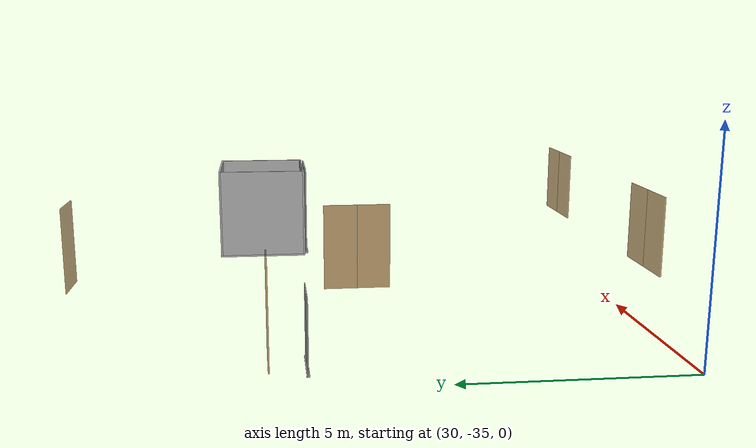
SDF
<sdf version="1.7">
 <world name="sim_world">
  <model name="puertaB1">
   <pose>38.637682729769594 -37.12627257180816 0.0 0 0 3.136013505506541</pose>
   <link name="right">
    <pose>0.6280277892987371 0 1.11 0 0 0</pose>
    <visual name="right_visual">
     <geometry><box><size>1.2460555785974743 0.03 2.2</size></box></geometry>
     <material>
      <ambient>0.5 0.25 0 0.6</ambient>
      <diffuse>0.5 0.25 0 0.6</diffuse>
      <pbr><metal><metalness>0.0</metalness></metal></pbr>
     </material>
    </visual>
    <collision name="right_collision">
     <geometry><box><size>1.2460555785974743 0.03 2.2</size></box></geometry>
     <surface><contact><collide_bitmask>0x02</collide_bitmask></contact></surface>
    </collision>
    <inertial>
     <mass>50.0</mass>
     <inertia><ixx>20.17041666666667</ixx><iyy>26.636060437307865</iyy><izz>6.473143770641194</izz></inertia>
    </inertial>
   </link>
   <joint name="right_joint" type="revolute">
    <parent>world</parent>
    <child>right</child>
    <axis><xyz>0 0 -1</xyz><limit><lower>0</lower><upper>1.57</upper></limit></axis>
    <pose>0.6280277892987371 0 0 0 0 0</pose>
   </joint>
   <link name="left">
    <pose>-0.6280277892987371 0 1.11 0 0 0</pose>
    <visual name="left_visual">
     <geometry><box><size>1.2460555785974743 0.03 2.2</size></box></geometry>
     <material>
      <ambient>0.5 0.25 0 0.6</ambient>
      <diffuse>0.5 0.25 0 0.6</diffuse>
      <pbr><metal><metalness>0.0</metalness></metal></pbr>
     </material>
    </visual>
    <collision name="left_collision">
     <geometry><box><size>1.2460555785974743 0.03 2.2</size></box></geometry>
     <surface><contact><collide_bitmask>0x02</collide_bitmask></contact></surface>
    </collision>
    <inertial>
     <mass>50.0</mass>
     <inertia><ixx>20.17041666666667</ixx><iyy>26.636060437307865</iyy><izz>6.473143770641194</izz></inertia>
    </inertial>
   </link>
   <joint name="left_joint" type="revolute">
    <parent>world</parent>
    <child>left</child>
    <axis><xyz>0 0 -1</xyz><limit><lower>-1.57</lower><upper>0</upper></limit></axis>
    <pose>-0.6280277892987371 0 0 0 0 0</pose>
   </joint>
   <plugin name="register_component" filename="libregister_component.so">
    <component name="Door">
     <v_max_door>0.5</v_max_door>
     <a_max_door>0.3</a_max_door>
     <a_nom_door>0.15</a_nom_door>
     <dx_min_door>0.01</dx_min_door>
     <f_max_door>500.0</f_max_door>
     <ros_interface>true</ros_interface>
     <door name="puertaB1" type="DoubleSwingDoor" left_joint_name="left_joint" right_joint_name="right_joint"/>
    </component>
   </plugin>
  </model>
  <model name="puertaB2">
   <pose>47.033877145293445 -37.12741500091866 0.0 0 0 -3.1370089918595623</pose>
   <link name="right">
    <pose>0.6398023558405757 0 1.11 0 0 0</pose>
    <visual name="right_visual">
     <geometry><box><size>1.2696047116811513 0.03 2.2</size></box></geometry>
     <material>
      <ambient>0.5 0.25 0 0.6</ambient>
      <diffuse>0.5 0.25 0 0.6</diffuse>
      <pbr><metal><metalness>0.0</metalness></metal></pbr>
     </material>
    </visual>
    <collision name="right_collision">
     <geometry><box><size>1.2696047116811513 0.03 2.2</size></box></geometry>
     <surface><contact><collide_bitmask>0x02</collide_bitmask></contact></surface>
    </collision>
    <inertial>
     <mass>50.0</mass>
     <inertia><ixx>20.17041666666667</ixx><iyy>26.882900516345753</iyy><izz>6.71998384967908</izz></inertia>
    </inertial>
   </link>
   <joint name="right_joint" type="revolute">
    <parent>world</parent>
    <child>right</child>
    <axis><xyz>0 0 -1</xyz><limit><lower>0</lower><upper>1.57</upper></limit></axis>
    <pose>0.6398023558405757 0 0 0 0 0</pose>
   </joint>
   <link name="left">
    <pose>-0.6398023558405757 0 1.11 0 0 0</pose>
    <visual name="left_visual">
     <geometry><box><size>1.2696047116811513 0.03 2.2</size></box></geometry>
     <material>
      <ambient>0.5 0.25 0 0.6</ambient>
      <diffuse>0.5 0.25 0 0.6</diffuse>
      <pbr><metal><metalness>0.0</metalness></metal></pbr>
     </material>
    </visual>
    <collision name="left_collision">
     <geometry><box><size>1.2696047116811513 0.03 2.2</size></box></geometry>
     <surface><contact><collide_bitmask>0x02</collide_bitmask></contact></surface>
    </collision>
    <inertial>
     <mass>50.0</mass>
     <inertia><ixx>20.17041666666667</ixx><iyy>26.882900516345753</iyy><izz>6.71998384967908</izz></inertia>
    </inertial>
   </link>
   <joint name="left_joint" type="revolute">
    <parent>world</parent>
    <child>left</child>
    <axis><xyz>0 0 -1</xyz><limit><lower>-1.57</lower><upper>0</upper></limit></axis>
    <pose>-0.6398023558405757 0 0 0 0 0</pose>
   </joint>
   <plugin name="register_component" filename="libregister_component.so">
    <component name="Door">
     <v_max_door>0.5</v_max_door>
     <a_max_door>0.3</a_max_door>
     <a_nom_door>0.15</a_nom_door>
     <dx_min_door>0.01</dx_min_door>
     <f_max_door>500.0</f_max_door>
     <ros_interface>true</ros_interface>
     <door name="puertaB2" type="DoubleSwingDoor" left_joint_name="left_joint" right_joint_name="right_joint"/>
    </component>
   </plugin>
  </model>
  <model name="puertaB4">
   <pose>37.19075503964348 -28.809400424936527 0.0 0 0 -1.560095286636433</pose>
   <link name="right">
    <pose>0.432546071391894 0 1.11 0 0 0</pose>
    <visual name="right_visual">
     <geometry><box><size>0.855092142783788 0.03 2.2</size></box></geometry>
     <material>
      <ambient>0.5 0.25 0 0.6</ambient>
      <diffuse>0.5 0.25 0 0.6</diffuse>
      <pbr><metal><metalness>0.0</metalness></metal></pbr>
     </material>
    </visual>
    <collision name="right_collision">
     <geometry><box><size>0.855092142783788 0.03 2.2</size></box></geometry>
     <surface><contact><collide_bitmask>0x02</collide_bitmask></contact></surface>
    </collision>
    <inertial>
     <mass>50.0</mass>
     <inertia><ixx>20.17041666666667</ixx><iyy>23.21326071937738</iyy><izz>3.050344052710709</izz></inertia>
    </inertial>
   </link>
   <joint name="right_joint" type="revolute">
    <parent>world</parent>
    <child>right</child>
    <axis><xyz>0 0 -1</xyz><limit><lower>0</lower><upper>1.57</upper></limit></axis>
    <pose>0.432546071391894 0 0 0 0 0</pose>
   </joint>
   <link name="left">
    <pose>-0.432546071391894 0 1.11 0 0 0</pose>
    <visual name="left_visual">
     <geometry><box><size>0.855092142783788 0.03 2.2</size></box></geometry>
     <material>
      <ambient>0.5 0.25 0 0.6</ambient>
      <diffuse>0.5 0.25 0 0.6</diffuse>
      <pbr><metal><metalness>0.0</metalness></metal></pbr>
     </material>
    </visual>
    <collision name="left_collision">
     <geometry><box><size>0.855092142783788 0.03 2.2</size></box></geometry>
     <surface><contact><collide_bitmask>0x02</collide_bitmask></contact></surface>
    </collision>
    <inertial>
     <mass>50.0</mass>
     <inertia><ixx>20.17041666666667</ixx><iyy>23.21326071937738</iyy><izz>3.050344052710709</izz></inertia>
    </inertial>
   </link>
   <joint name="left_joint" type="revolute">
    <parent>world</parent>
    <child>left</child>
    <axis><xyz>0 0 -1</xyz><limit><lower>-1.57</lower><upper>0</upper></limit></axis>
    <pose>-0.432546071391894 0 0 0 0 0</pose>
   </joint>
   <plugin name="register_component" filename="libregister_component.so">
    <component name="Door">
     <v_max_door>0.5</v_max_door>
     <a_max_door>0.3</a_max_door>
     <a_nom_door>0.15</a_nom_door>
     <dx_min_door>0.01</dx_min_door>
     <f_max_door>500.0</f_max_door>
     <ros_interface>true</ros_interface>
     <door name="puertaB4" type="DoubleSwingDoor" left_joint_name="left_joint" right_joint_name="right_joint"/>
    </component>
   </plugin>
  </model>
  <model name="puerta2">
   <pose>31.62593573188485 -26.463345691982276 0.0 0 0 0.010278512859814274</pose>
   <link name="right">
    <pose>0 0 1.11 0 0 0</pose>
    <visual name="right_visual">
     <geometry><box><size>1.355875595919269 0.03 2.2</size></box></geometry>
     <material>
      <ambient>0.5 0.25 0 0.6</ambient>
      <diffuse>0.5 0.25 0 0.6</diffuse>
      <pbr><metal><metalness>0.0</metalness></metal></pbr>
     </material>
    </visual>
    <collision name="right_collision">
     <geometry><box><size>1.355875595919269 0.03 2.2</size></box></geometry>
     <surface><contact><collide_bitmask>0x02</collide_bitmask></contact></surface>
    </collision>
    <inertial>
     <mass>50.0</mass>
     <inertia><ixx>20.17041666666667</ixx><iyy>27.82666096503931</iyy><izz>7.663744298372636</izz></inertia>
    </inertial>
   </link>
   <joint name="right_joint" type="revolute">
    <parent>world</parent>
    <child>right</child>
    <axis><xyz>0 0 -1</xyz><limit><lower>0</lower><upper>1.57</upper></limit></axis>
    <pose>0.6829377979596345 0 0 0 0 0</pose>
   </joint>
   <plugin name="register_component" filename="libregister_component.so">
    <component name="Door">
     <v_max_door>0.5</v_max_door>
     <a_max_door>0.3</a_max_door>
     <a_nom_door>0.15</a_nom_door>
     <dx_min_door>0.01</dx_min_door>
     <f_max_door>500.0</f_max_door>
     <ros_interface>true</ros_interface>
     <door name="puerta2" type="SwingDoor" left_joint_name="empty_joint" right_joint_name="right_joint"/>
    </component>
   </plugin>
  </model>
  <model name="puertaB5">
   <pose>38.01422265354484 -21.382527665628672 0.0 0 0 3.117840569362342</pose>
   <link name="right">
    <pose>0 0 1.11 0 0 0</pose>
    <visual name="right_visual">
     <geometry><box><size>1.2396752796384625 0.03 2.2</size></box></geometry>
     <material>
      <ambient>0.5 0.25 0 0.6</ambient>
      <diffuse>0.5 0.25 0 0.6</diffuse>
      <pbr><metal><metalness>0.0</metalness></metal></pbr>
     </material>
    </visual>
    <collision name="right_collision">
     <geometry><box><size>1.2396752796384625 0.03 2.2</size></box></geometry>
     <surface><contact><collide_bitmask>0x02</collide_bitmask></contact></surface>
    </collision>
    <inertial>
     <mass>50.0</mass>
     <inertia><ixx>20.17041666666667</ixx><iyy>26.56997832894459</iyy><izz>6.4070616622779175</izz></inertia>
    </inertial>
   </link>
   <joint name="right_joint" type="revolute">
    <parent>world</parent>
    <child>right</child>
    <axis><xyz>0 0 1</xyz><limit><lower>0</lower><upper>1.57</upper></limit></axis>
    <pose>0.6248376398192312 0 0 0 0 0</pose>
   </joint>
   <plugin name="register_component" filename="libregister_component.so">
    <component name="Door">
     <v_max_door>0.5</v_max_door>
     <a_max_door>0.3</a_max_door>
     <a_nom_door>0.15</a_nom_door>
     <dx_min_door>0.01</dx_min_door>
     <f_max_door>500.0</f_max_door>
     <ros_interface>true</ros_interface>
     <door name="puertaB5" type="SwingDoor" left_joint_name="empty_joint" right_joint_name="right_joint"/>
    </component>
   </plugin>
  </model>
  <model name="ShaftDoor_lift1_baixa_lift1">
   <pose>42.54076234176769 -27.681868118925703 0.0 0 0 0.0</pose>
   <link name="right_door">
    <pose>0.5 0 1.25 0 0 0</pose>
    <visual name="right_door_visual">
     <geometry><box><size>1.0 0.03 2.5</size></box></geometry>
     <material>
      <ambient>0.5 0.5 0.5 1</ambient>
      <diffuse>0.7 0.7 0.7 1</diffuse>
      <specular>0.6 0.6 0.6 1</specular>
      <emissive>0.1 0.1 0.1 1</emissive>
     </material>
    </visual>
    <collision name="right_door_collision">
     <geometry><box><size>1.0 0.03 2.5</size></box></geometry>
     <surface><contact><collide_bitmask>0x02</collide_bitmask></contact></surface>
    </collision>
   </link>
   <link name="left_door">
    <pose>-0.5 0 1.25 0 0 0</pose>
    <visual name="left_door_visual">
     <geometry><box><size>1.0 0.03 2.5</size></box></geometry>
     <material>
      <ambient>0.5 0.5 0.5 1</ambient>
      <diffuse>0.7 0.7 0.7 1</diffuse>
      <specular>0.6 0.6 0.6 1</specular>
      <emissive>0.1 0.1 0.1 1</emissive>
     </material>
    </visual>
    <collision name="left_door_collision">
     <geometry><box><size>1.0 0.03 2.5</size></box></geometry>
     <surface><contact><collide_bitmask>0x02</collide_bitmask></contact></surface>
    </collision>
   </link>
   <joint name="right_joint" type="prismatic">
    <parent>world</parent>
    <child>right_door</child>
    <axis><xyz>1 0 0</xyz><limit><lower>0</lower><upper>1.0</upper></limit></axis>
   </joint>
   <joint name="left_joint" type="prismatic">
    <parent>world</parent>
    <child>left_door</child>
    <axis><xyz>1 0 0</xyz><limit><lower>-1.0</lower><upper>0</upper></limit></axis>
   </joint>
   <link name="ramp">
    <pose>0 0 -0.025 0 0 0</pose>
    <visual name="ramp_visual">
     <geometry><box><size>2.0 0.1 0.05</size></box></geometry>
     <material>
      <ambient>0.5 0.5 0.5 1</ambient>
      <diffuse>0.7 0.7 0.7 1</diffuse>
      <specular>0.6 0.6 0.6 1</specular>
      <emissive>0.1 0.1 0.1 1</emissive>
     </material>
    </visual>
    <collision name="ramp_collision">
     <geometry><box><size>2.0 0.1 0.05</size></box></geometry>
     <surface><contact><collide_bitmask>0x02</collide_bitmask></contact></surface>
    </collision>
   </link>
   <joint name="ramp_joint" type="fixed"><parent>world</parent><child>ramp</child></joint>
   <plugin name="register_component" filename="libregister_component.so">
    <component name="Door">
     <v_max_door>0.3</v_max_door>
     <a_max_door>0.2</a_max_door>
     <a_nom_door>0.1</a_nom_door>
     <dx_min_door>0.0001</dx_min_door>
     <f_max_door>35.0</f_max_door>
     <door left_joint_name="left_joint" name="ShaftDoor_lift1_baixa_lift1" right_joint_name="right_joint" type="DoubleSlidingDoor"/>
    </component>
   </plugin>
  </model>
  <model name="ShaftDoor_lift1_soterrani_1_lift1">
   <pose>42.54076234176769 -27.681868118925703 -4.0 0 0 0.0</pose>
   <link name="right_door">
    <pose>0.5 0 1.25 0 0 0</pose>
    <visual name="right_door_visual">
     <geometry><box><size>1.0 0.03 2.5</size></box></geometry>
     <material>
      <ambient>0.5 0.5 0.5 1</ambient>
      <diffuse>0.7 0.7 0.7 1</diffuse>
      <specular>0.6 0.6 0.6 1</specular>
      <emissive>0.1 0.1 0.1 1</emissive>
     </material>
    </visual>
    <collision name="right_door_collision">
     <geometry><box><size>1.0 0.03 2.5</size></box></geometry>
     <surface><contact><collide_bitmask>0x02</collide_bitmask></contact></surface>
    </collision>
   </link>
   <link name="left_door">
    <pose>-0.5 0 1.25 0 0 0</pose>
    <visual name="left_door_visual">
     <geometry><box><size>1.0 0.03 2.5</size></box></geometry>
     <material>
      <ambient>0.5 0.5 0.5 1</ambient>
      <diffuse>0.7 0.7 0.7 1</diffuse>
      <specular>0.6 0.6 0.6 1</specular>
      <emissive>0.1 0.1 0.1 1</emissive>
     </material>
    </visual>
    <collision name="left_door_collision">
     <geometry><box><size>1.0 0.03 2.5</size></box></geometry>
     <surface><contact><collide_bitmask>0x02</collide_bitmask></contact></surface>
    </collision>
   </link>
   <joint name="right_joint" type="prismatic">
    <parent>world</parent>
    <child>right_door</child>
    <axis><xyz>1 0 0</xyz><limit><lower>0</lower><upper>1.0</upper></limit></axis>
   </joint>
   <joint name="left_joint" type="prismatic">
    <parent>world</parent>
    <child>left_door</child>
    <axis><xyz>1 0 0</xyz><limit><lower>-1.0</lower><upper>0</upper></limit></axis>
   </joint>
   <link name="ramp">
    <pose>0 0 -0.025 0 0 0</pose>
    <visual name="ramp_visual">
     <geometry><box><size>2.0 0.1 0.05</size></box></geometry>
     <material>
      <ambient>0.5 0.5 0.5 1</ambient>
      <diffuse>0.7 0.7 0.7 1</diffuse>
      <specular>0.6 0.6 0.6 1</specular>
      <emissive>0.1 0.1 0.1 1</emissive>
     </material>
    </visual>
    <collision name="ramp_collision">
     <geometry><box><size>2.0 0.1 0.05</size></box></geometry>
     <surface><contact><collide_bitmask>0x02</collide_bitmask></contact></surface>
    </collision>
   </link>
   <joint name="ramp_joint" type="fixed"><parent>world</parent><child>ramp</child></joint>
   <plugin name="register_component" filename="libregister_component.so">
    <component name="Door">
     <v_max_door>0.3</v_max_door>
     <a_max_door>0.2</a_max_door>
     <a_nom_door>0.1</a_nom_door>
     <dx_min_door>0.0001</dx_min_door>
     <f_max_door>35.0</f_max_door>
     <door left_joint_name="left_joint" name="ShaftDoor_lift1_soterrani_1_lift1" right_joint_name="right_joint" type="DoubleSlidingDoor"/>
    </component>
   </plugin>
  </model>
  <model name="lift1">
   <link name="platform">
    <inertial><mass>1200</mass><inertia><ixx>625.25</ixx><iyy>625.25</iyy><izz>1250.0</izz></inertia></inertial>
    <visual name="floor_visual">
     <pose>0 0 -0.025 0 0 0</pose>
     <geometry><box><size>2.5 2.5 0.05</size></box></geometry>
     <material>
      <ambient>0.5 0.5 0.5 1</ambient>
      <diffuse>0.7 0.7 0.7 1</diffuse>
      <specular>0.6 0.6 0.6 1</specular>
      <emissive>0.1 0.1 0.1 1</emissive>
     </material>
    </visual>
    <collision name="floor_collision">
     <pose>0 0 -0.025 0 0 0</pose>
     <geometry><box><size>2.5 2.5 0.05</size></box></geometry>
     <surface><contact><collide_bitmask>0x01</collide_bitmask></contact></surface>
    </collision>
    <visual name="frontwall1_visual">
     <pose>0.0 1.225 1.25 0 0 0</pose>
     <geometry><box><size>2.5 0.05 2.5</size></box></geometry>
     <material>
      <ambient>0.5 0.5 0.5 1</ambient>
      <diffuse>0.7 0.7 0.7 1</diffuse>
      <specular>0.6 0.6 0.6 1</specular>
      <emissive>0.1 0.1 0.1 1</emissive>
     </material>
    </visual>
    <collision name="frontwall1_collision">
     <pose>0.0 1.225 1.25 0 0 0</pose>
     <geometry><box><size>2.5 0.05 2.5</size></box></geometry>
     <surface><contact><collide_bitmask>0x01</collide_bitmask></contact></surface>
    </collision>
    <visual name="backwall1_visual">
     <pose>-1.125 -1.225 1.25 0 0 0</pose>
     <geometry><box><size>0.25 0.05 2.5</size></box></geometry>
     <material>
      <ambient>0.5 0.5 0.5 1</ambient>
      <diffuse>0.7 0.7 0.7 1</diffuse>
      <specular>0.6 0.6 0.6 1</specular>
      <emissive>0.1 0.1 0.1 1</emissive>
     </material>
    </visual>
    <collision name="backwall1_collision">
     <pose>-1.125 -1.225 1.25 0 0 0</pose>
     <geometry><box><size>0.25 0.05 2.5</size></box></geometry>
     <surface><contact><collide_bitmask>0x01</collide_bitmask></contact></surface>
    </collision>
    <visual name="backwall2_visual">
     <pose>1.125 -1.225 1.25 0 0 0</pose>
     <geometry><box><size>0.25 0.05 2.5</size></box></geometry>
     <material>
      <ambient>0.5 0.5 0.5 1</ambient>
      <diffuse>0.7 0.7 0.7 1</diffuse>
      <specular>0.6 0.6 0.6 1</specular>
      <emissive>0.1 0.1 0.1 1</emissive>
     </material>
    </visual>
    <collision name="backwall2_collision">
     <pose>1.125 -1.225 1.25 0 0 0</pose>
     <geometry><box><size>0.25 0.05 2.5</size></box></geometry>
     <surface><contact><collide_bitmask>0x01</collide_bitmask></contact></surface>
    </collision>
    <visual name="leftwall1_visual">
     <pose>-1.225 0.0 1.25 0 0 1.5707963267948966</pose>
     <geometry><box><size>2.4 0.05 2.5</size></box></geometry>
     <material>
      <ambient>0.5 0.5 0.5 1</ambient>
      <diffuse>0.7 0.7 0.7 1</diffuse>
      <specular>0.6 0.6 0.6 1</specular>
      <emissive>0.1 0.1 0.1 1</emissive>
     </material>
    </visual>
    <collision name="leftwall1_collision">
     <pose>-1.225 0.0 1.25 0 0 1.5707963267948966</pose>
     <geometry><box><size>2.4 0.05 2.5</size></box></geometry>
     <surface><contact><collide_bitmask>0x01</collide_bitmask></contact></surface>
    </collision>
    <visual name="rightwall1_visual">
     <pose>1.225 0.0 1.25 0 0 1.5707963267948966</pose>
     <geometry><box><size>2.4 0.05 2.5</size></box></geometry>
     <material>
      <ambient>0.5 0.5 0.5 1</ambient>
      <diffuse>0.7 0.7 0.7 1</diffuse>
      <specular>0.6 0.6 0.6 1</specular>
      <emissive>0.1 0.1 0.1 1</emissive>
     </material>
    </visual>
    <collision name="rightwall1_collision">
     <pose>1.225 0.0 1.25 0 0 1.5707963267948966</pose>
     <geometry><box><size>2.4 0.05 2.5</size></box></geometry>
     <surface><contact><collide_bitmask>0x01</collide_bitmask></contact></surface>
    </collision>
   </link>
   <joint name="cabin_joint" type="prismatic">
    <parent>world</parent>
    <child>platform</child>
    <axis><xyz>0 0 1</xyz></axis>
   </joint>
   <model name="CabinDoor_lift1_lift1">
    <pose>0.0 -1.225 0 0 0 0.0</pose>
    <link name="right_door">
     <pose>0.5 0 1.25 0 0 0</pose>
     <visual name="right_door_visual">
      <geometry><box><size>1.0 0.03 2.5</size></box></geometry>
      <material>
       <ambient>0.5 0.5 0.5 1</ambient>
       <diffuse>0.7 0.7 0.7 1</diffuse>
       <specular>0.6 0.6 0.6 1</specular>
       <emissive>0.1 0.1 0.1 1</emissive>
      </material>
     </visual>
     <collision name="right_door_collision">
      <geometry><box><size>1.0 0.03 2.5</size></box></geometry>
      <surface><contact><collide_bitmask>0x02</collide_bitmask></contact></surface>
     </collision>
    </link>
    <link name="left_door">
     <pose>-0.5 0 1.25 0 0 0</pose>
     <visual name="left_door_visual">
      <geometry><box><size>1.0 0.03 2.5</size></box></geometry>
      <material>
       <ambient>0.5 0.5 0.5 1</ambient>
       <diffuse>0.7 0.7 0.7 1</diffuse>
       <specular>0.6 0.6 0.6 1</specular>
       <emissive>0.1 0.1 0.1 1</emissive>
      </material>
     </visual>
     <collision name="left_door_collision">
      <geometry><box><size>1.0 0.03 2.5</size></box></geometry>
      <surface><contact><collide_bitmask>0x02</collide_bitmask></contact></surface>
     </collision>
    </link>
    <plugin name="register_component" filename="libregister_component.so">
     <component name="Door">
      <v_max_door>0.3</v_max_door>
      <a_max_door>0.2</a_max_door>
      <a_nom_door>0.1</a_nom_door>
      <dx_min_door>0.0001</dx_min_door>
      <f_max_door>35.0</f_max_door>
      <door left_joint_name="CabinDoor_lift1_lift1_left_joint" name="CabinDoor_lift1_lift1" right_joint_name="CabinDoor_lift1_lift1_right_joint" type="DoubleSlidingDoor"/>
     </component>
    </plugin>
   </model>
   <joint name="CabinDoor_lift1_lift1_right_joint" type="prismatic">
    <parent>platform</parent>
    <child>CabinDoor_lift1_lift1::right_door</child>
    <axis><xyz>1 0 0</xyz><limit><lower>0</lower><upper>1.0</upper></limit></axis>
   </joint>
   <joint name="CabinDoor_lift1_lift1_left_joint" type="prismatic">
    <parent>platform</parent>
    <child>CabinDoor_lift1_lift1::left_door</child>
    <axis><xyz>1 0 0</xyz><limit><lower>-1.0</lower><upper>0</upper></limit></axis>
   </joint>
   <plugin name="register_component" filename="libregister_component.so">
    <component name="Lift">
     <lift_name>lift1</lift_name>
     <floor name="baixa" elevation="0.0">
      <door_pair cabin_door="CabinDoor_lift1_lift1" shaft_door="ShaftDoor_lift1_baixa_lift1"/>
     </floor>
     <floor name="soterrani_1" elevation="-4.0">
      <door_pair cabin_door="CabinDoor_lift1_lift1" shaft_door="ShaftDoor_lift1_soterrani_1_lift1"/>
     </floor>
     <initial_floor>baixa</initial_floor>
     <v_max_cabin>2.0</v_max_cabin>
     <a_max_cabin>1.2</a_max_cabin>
     <a_nom_cabin>1.0</a_nom_cabin>
     <dx_min_cabin>0.001</dx_min_cabin>
     <f_max_cabin>25323.0</f_max_cabin>
     <cabin_joint_name>cabin_joint</cabin_joint_name>
    </component>
   </plugin>
   <pose>42.54076234176769 -26.381868118925702 0 0 0 0.0</pose>
  </model>
 </world>
</sdf>
